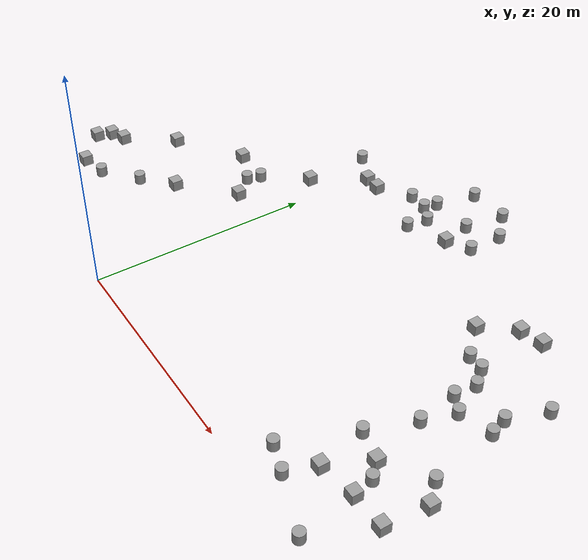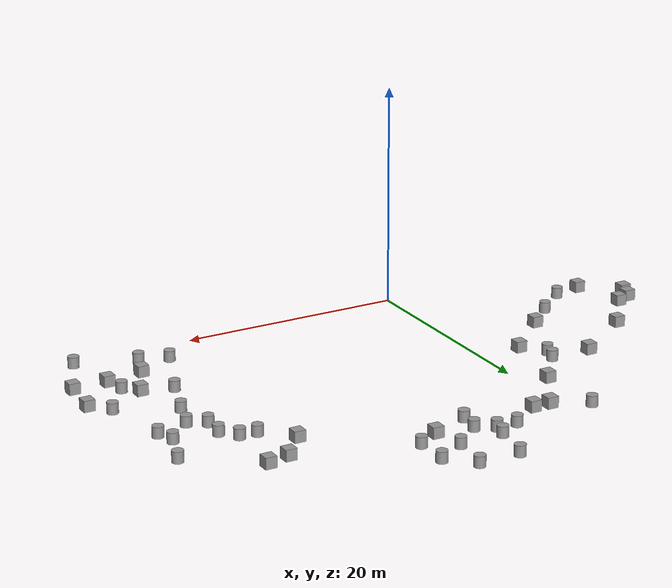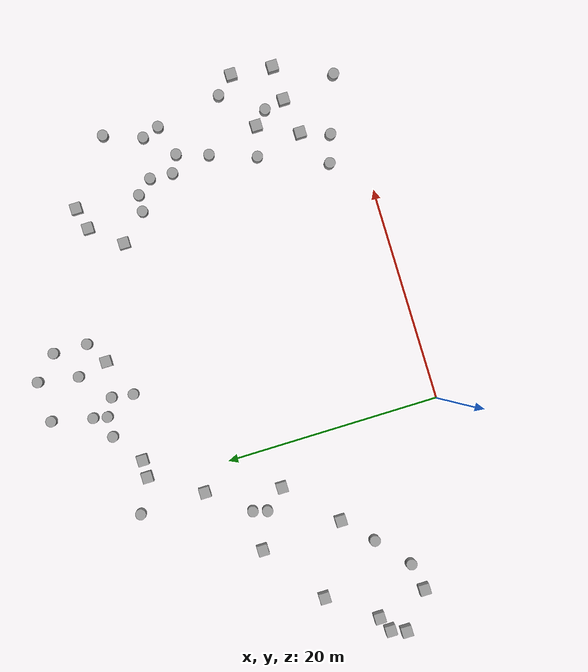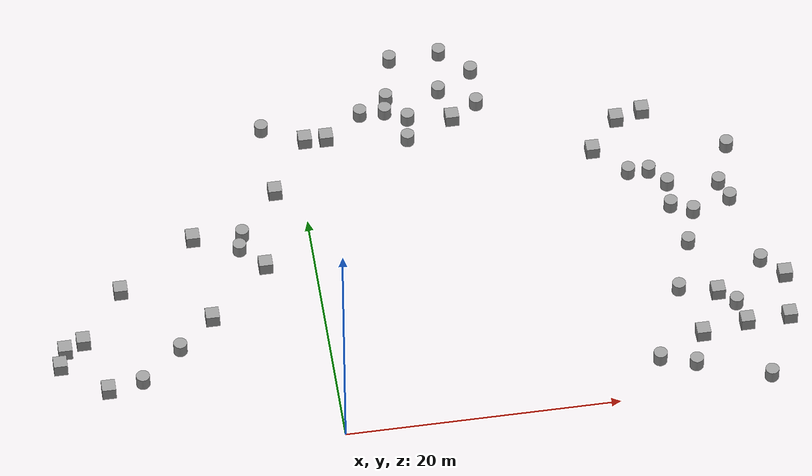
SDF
<sdf version="1.4">
 <world name="default">
  <include><uri>model://urdf/models/sun</uri></include>
  <model name="box_1">
   <pose>-17.665519 10.951884 0.500000 0.000000 0.000000 0.000000</pose>
   <link name="link">
    <inertial>
     <mass>1.000000</mass>
     <inertia>
      <ixx>0.166667</ixx>
      <ixy>0</ixy>
      <ixz>0</ixz>
      <iyy>0.166667</iyy>
      <iyz>0</iyz>
      <izz>0.166667</izz>
     </inertia>
    </inertial>
    <collision name="collision">
     <geometry><box><size>1.000000 1.000000 1.000000</size></box></geometry>
    </collision>
    <visual name="visual">
     <geometry><box><size>1.000000 1.000000 1.000000</size></box></geometry>
     <material>
      <script><name>Gazebo/Grey</name><uri>file://media/materials/scripts/gazebo.material</uri></script>
     </material>
    </visual>
   </link>
  </model>
  <model name="cylindar_2">
   <pose>-5.322258 17.909746 0.500000 0.000000 0.000000 0.000000</pose>
   <link name="link">
    <inertial>
     <mass>1.000000</mass>
     <inertia><ixx>0.145833</ixx><ixy>0</ixy><ixz>0</ixz><iyy>0.145833</iyy><iyz>0</iyz><izz>0.125</izz></inertia>
    </inertial>
    <collision name="collision">
     <geometry><cylinder><radius>0.500000</radius><length>1.000000</length></cylinder></geometry>
    </collision>
    <visual name="visual">
     <geometry><cylinder><radius>0.500000</radius><length>1.000000</length></cylinder></geometry>
     <material>
      <script><name>Gazebo/Grey</name><uri>file://media/materials/scripts/gazebo.material</uri></script>
     </material>
    </visual>
   </link>
  </model>
  <model name="cylindar_4">
   <pose>12.043559 34.589456 0.500000 0.000000 0.000000 0.000000</pose>
   <link name="link">
    <inertial>
     <mass>1.000000</mass>
     <inertia><ixx>0.145833</ixx><ixy>0</ixy><ixz>0</ixz><iyy>0.145833</iyy><iyz>0</iyz><izz>0.125</izz></inertia>
    </inertial>
    <collision name="collision">
     <geometry><cylinder><radius>0.500000</radius><length>1.000000</length></cylinder></geometry>
    </collision>
    <visual name="visual">
     <geometry><cylinder><radius>0.500000</radius><length>1.000000</length></cylinder></geometry>
     <material>
      <script><name>Gazebo/Grey</name><uri>file://media/materials/scripts/gazebo.material</uri></script>
     </material>
    </visual>
   </link>
  </model>
  <model name="box_11">
   <pose>-2.035579 22.907309 0.500000 0.000000 0.000000 0.000000</pose>
   <link name="link">
    <inertial>
     <mass>1.000000</mass>
     <inertia>
      <ixx>0.166667</ixx>
      <ixy>0</ixy>
      <ixz>0</ixz>
      <iyy>0.166667</iyy>
      <iyz>0</iyz>
      <izz>0.166667</izz>
     </inertia>
    </inertial>
    <collision name="collision">
     <geometry><box><size>1.000000 1.000000 1.000000</size></box></geometry>
    </collision>
    <visual name="visual">
     <geometry><box><size>1.000000 1.000000 1.000000</size></box></geometry>
     <material>
      <script><name>Gazebo/Grey</name><uri>file://media/materials/scripts/gazebo.material</uri></script>
     </material>
    </visual>
   </link>
  </model>
  <model name="cylindar_13">
   <pose>14.152731 32.445312 0.500000 0.000000 0.000000 0.000000</pose>
   <link name="link">
    <inertial>
     <mass>1.000000</mass>
     <inertia><ixx>0.145833</ixx><ixy>0</ixy><ixz>0</ixz><iyy>0.145833</iyy><iyz>0</iyz><izz>0.125</izz></inertia>
    </inertial>
    <collision name="collision">
     <geometry><cylinder><radius>0.500000</radius><length>1.000000</length></cylinder></geometry>
    </collision>
    <visual name="visual">
     <geometry><cylinder><radius>0.500000</radius><length>1.000000</length></cylinder></geometry>
     <material>
      <script><name>Gazebo/Grey</name><uri>file://media/materials/scripts/gazebo.material</uri></script>
     </material>
    </visual>
   </link>
  </model>
  <model name="cylindar_15">
   <pose>25.929253 9.365145 0.500000 0.000000 0.000000 0.000000</pose>
   <link name="link">
    <inertial>
     <mass>1.000000</mass>
     <inertia><ixx>0.145833</ixx><ixy>0</ixy><ixz>0</ixz><iyy>0.145833</iyy><iyz>0</iyz><izz>0.125</izz></inertia>
    </inertial>
    <collision name="collision">
     <geometry><cylinder><radius>0.500000</radius><length>1.000000</length></cylinder></geometry>
    </collision>
    <visual name="visual">
     <geometry><cylinder><radius>0.500000</radius><length>1.000000</length></cylinder></geometry>
     <material>
      <script><name>Gazebo/Grey</name><uri>file://media/materials/scripts/gazebo.material</uri></script>
     </material>
    </visual>
   </link>
  </model>
  <model name="box_17">
   <pose>-16.359451 6.270912 0.500000 0.000000 0.000000 0.000000</pose>
   <link name="link">
    <inertial>
     <mass>1.000000</mass>
     <inertia>
      <ixx>0.166667</ixx>
      <ixy>0</ixy>
      <ixz>0</ixz>
      <iyy>0.166667</iyy>
      <iyz>0</iyz>
      <izz>0.166667</izz>
     </inertia>
    </inertial>
    <collision name="collision">
     <geometry><box><size>1.000000 1.000000 1.000000</size></box></geometry>
    </collision>
    <visual name="visual">
     <geometry><box><size>1.000000 1.000000 1.000000</size></box></geometry>
     <material>
      <script><name>Gazebo/Grey</name><uri>file://media/materials/scripts/gazebo.material</uri></script>
     </material>
    </visual>
   </link>
  </model>
  <model name="box_21">
   <pose>12.042444 28.069900 0.500000 0.000000 0.000000 0.000000</pose>
   <link name="link">
    <inertial>
     <mass>1.000000</mass>
     <inertia>
      <ixx>0.166667</ixx>
      <ixy>0</ixy>
      <ixz>0</ixz>
      <iyy>0.166667</iyy>
      <iyz>0</iyz>
      <izz>0.166667</izz>
     </inertia>
    </inertial>
    <collision name="collision">
     <geometry><box><size>1.000000 1.000000 1.000000</size></box></geometry>
    </collision>
    <visual name="visual">
     <geometry><box><size>1.000000 1.000000 1.000000</size></box></geometry>
     <material>
      <script><name>Gazebo/Grey</name><uri>file://media/materials/scripts/gazebo.material</uri></script>
     </material>
    </visual>
   </link>
  </model>
  <model name="cylindar_22">
   <pose>26.872980 19.345198 0.500000 0.000000 0.000000 0.000000</pose>
   <link name="link">
    <inertial>
     <mass>1.000000</mass>
     <inertia><ixx>0.145833</ixx><ixy>0</ixy><ixz>0</ixz><iyy>0.145833</iyy><iyz>0</iyz><izz>0.125</izz></inertia>
    </inertial>
    <collision name="collision">
     <geometry><cylinder><radius>0.500000</radius><length>1.000000</length></cylinder></geometry>
    </collision>
    <visual name="visual">
     <geometry><cylinder><radius>0.500000</radius><length>1.000000</length></cylinder></geometry>
     <material>
      <script><name>Gazebo/Grey</name><uri>file://media/materials/scripts/gazebo.material</uri></script>
     </material>
    </visual>
   </link>
  </model>
  <model name="cylindar_24">
   <pose>-2.232297 29.077389 0.500000 0.000000 0.000000 0.000000</pose>
   <link name="link">
    <inertial>
     <mass>1.000000</mass>
     <inertia><ixx>0.145833</ixx><ixy>0</ixy><ixz>0</ixz><iyy>0.145833</iyy><iyz>0</iyz><izz>0.125</izz></inertia>
    </inertial>
    <collision name="collision">
     <geometry><cylinder><radius>0.500000</radius><length>1.000000</length></cylinder></geometry>
    </collision>
    <visual name="visual">
     <geometry><cylinder><radius>0.500000</radius><length>1.000000</length></cylinder></geometry>
     <material>
      <script><name>Gazebo/Grey</name><uri>file://media/materials/scripts/gazebo.material</uri></script>
     </material>
    </visual>
   </link>
  </model>
  <model name="box_25">
   <pose>26.909636 4.998011 0.500000 0.000000 0.000000 0.000000</pose>
   <link name="link">
    <inertial>
     <mass>1.000000</mass>
     <inertia>
      <ixx>0.166667</ixx>
      <ixy>0</ixy>
      <ixz>0</ixz>
      <iyy>0.166667</iyy>
      <iyz>0</iyz>
      <izz>0.166667</izz>
     </inertia>
    </inertial>
    <collision name="collision">
     <geometry><box><size>1.000000 1.000000 1.000000</size></box></geometry>
    </collision>
    <visual name="visual">
     <geometry><box><size>1.000000 1.000000 1.000000</size></box></geometry>
     <material>
      <script><name>Gazebo/Grey</name><uri>file://media/materials/scripts/gazebo.material</uri></script>
     </material>
    </visual>
   </link>
  </model>
  <model name="cylindar_26">
   <pose>29.852892 7.454227 0.500000 0.000000 0.000000 0.000000</pose>
   <link name="link">
    <inertial>
     <mass>1.000000</mass>
     <inertia><ixx>0.145833</ixx><ixy>0</ixy><ixz>0</ixz><iyy>0.145833</iyy><iyz>0</iyz><izz>0.125</izz></inertia>
    </inertial>
    <collision name="collision">
     <geometry><cylinder><radius>0.500000</radius><length>1.000000</length></cylinder></geometry>
    </collision>
    <visual name="visual">
     <geometry><cylinder><radius>0.500000</radius><length>1.000000</length></cylinder></geometry>
     <material>
      <script><name>Gazebo/Grey</name><uri>file://media/materials/scripts/gazebo.material</uri></script>
     </material>
    </visual>
   </link>
  </model>
  <model name="cylindar_27">
   <pose>-4.958954 19.207233 0.500000 0.000000 0.000000 0.000000</pose>
   <link name="link">
    <inertial>
     <mass>1.000000</mass>
     <inertia><ixx>0.145833</ixx><ixy>0</ixy><ixz>0</ixz><iyy>0.145833</iyy><iyz>0</iyz><izz>0.125</izz></inertia>
    </inertial>
    <collision name="collision">
     <geometry><cylinder><radius>0.500000</radius><length>1.000000</length></cylinder></geometry>
    </collision>
    <visual name="visual">
     <geometry><cylinder><radius>0.500000</radius><length>1.000000</length></cylinder></geometry>
     <material>
      <script><name>Gazebo/Grey</name><uri>file://media/materials/scripts/gazebo.material</uri></script>
     </material>
    </visual>
   </link>
  </model>
  <model name="cylindar_28">
   <pose>31.890558 22.335854 0.500000 0.000000 0.000000 0.000000</pose>
   <link name="link">
    <inertial>
     <mass>1.000000</mass>
     <inertia><ixx>0.145833</ixx><ixy>0</ixy><ixz>0</ixz><iyy>0.145833</iyy><iyz>0</iyz><izz>0.125</izz></inertia>
    </inertial>
    <collision name="collision">
     <geometry><cylinder><radius>0.500000</radius><length>1.000000</length></cylinder></geometry>
    </collision>
    <visual name="visual">
     <geometry><cylinder><radius>0.500000</radius><length>1.000000</length></cylinder></geometry>
     <material>
      <script><name>Gazebo/Grey</name><uri>file://media/materials/scripts/gazebo.material</uri></script>
     </material>
    </visual>
   </link>
  </model>
  <model name="box_32">
   <pose>24.177609 26.104941 0.500000 0.000000 0.000000 0.000000</pose>
   <link name="link">
    <inertial>
     <mass>1.000000</mass>
     <inertia>
      <ixx>0.166667</ixx>
      <ixy>0</ixy>
      <ixz>0</ixz>
      <iyy>0.166667</iyy>
      <iyz>0</iyz>
      <izz>0.166667</izz>
     </inertia>
    </inertial>
    <collision name="collision">
     <geometry><box><size>1.000000 1.000000 1.000000</size></box></geometry>
    </collision>
    <visual name="visual">
     <geometry><box><size>1.000000 1.000000 1.000000</size></box></geometry>
     <material>
      <script><name>Gazebo/Grey</name><uri>file://media/materials/scripts/gazebo.material</uri></script>
     </material>
    </visual>
   </link>
  </model>
  <model name="box_34">
   <pose>33.836100 9.510949 0.500000 0.000000 0.000000 0.000000</pose>
   <link name="link">
    <inertial>
     <mass>1.000000</mass>
     <inertia>
      <ixx>0.166667</ixx>
      <ixy>0</ixy>
      <ixz>0</ixz>
      <iyy>0.166667</iyy>
      <iyz>0</iyz>
      <izz>0.166667</izz>
     </inertia>
    </inertial>
    <collision name="collision">
     <geometry><box><size>1.000000 1.000000 1.000000</size></box></geometry>
    </collision>
    <visual name="visual">
     <geometry><box><size>1.000000 1.000000 1.000000</size></box></geometry>
     <material>
      <script><name>Gazebo/Grey</name><uri>file://media/materials/scripts/gazebo.material</uri></script>
     </material>
    </visual>
   </link>
  </model>
  <model name="box_38">
   <pose>-3.653764 16.031023 0.500000 0.000000 0.000000 0.000000</pose>
   <link name="link">
    <inertial>
     <mass>1.000000</mass>
     <inertia>
      <ixx>0.166667</ixx>
      <ixy>0</ixy>
      <ixz>0</ixz>
      <iyy>0.166667</iyy>
      <iyz>0</iyz>
      <izz>0.166667</izz>
     </inertia>
    </inertial>
    <collision name="collision">
     <geometry><box><size>1.000000 1.000000 1.000000</size></box></geometry>
    </collision>
    <visual name="visual">
     <geometry><box><size>1.000000 1.000000 1.000000</size></box></geometry>
     <material>
      <script><name>Gazebo/Grey</name><uri>file://media/materials/scripts/gazebo.material</uri></script>
     </material>
    </visual>
   </link>
  </model>
  <model name="cylindar_41">
   <pose>11.443076 30.857965 0.500000 0.000000 0.000000 0.000000</pose>
   <link name="link">
    <inertial>
     <mass>1.000000</mass>
     <inertia><ixx>0.145833</ixx><ixy>0</ixy><ixz>0</ixz><iyy>0.145833</iyy><iyz>0</iyz><izz>0.125</izz></inertia>
    </inertial>
    <collision name="collision">
     <geometry><cylinder><radius>0.500000</radius><length>1.000000</length></cylinder></geometry>
    </collision>
    <visual name="visual">
     <geometry><cylinder><radius>0.500000</radius><length>1.000000</length></cylinder></geometry>
     <material>
      <script><name>Gazebo/Grey</name><uri>file://media/materials/scripts/gazebo.material</uri></script>
     </material>
    </visual>
   </link>
  </model>
  <model name="cylindar_44">
   <pose>-13.803489 6.749120 0.500000 0.000000 0.000000 0.000000</pose>
   <link name="link">
    <inertial>
     <mass>1.000000</mass>
     <inertia><ixx>0.145833</ixx><ixy>0</ixy><ixz>0</ixz><iyy>0.145833</iyy><iyz>0</iyz><izz>0.125</izz></inertia>
    </inertial>
    <collision name="collision">
     <geometry><cylinder><radius>0.500000</radius><length>1.000000</length></cylinder></geometry>
    </collision>
    <visual name="visual">
     <geometry><cylinder><radius>0.500000</radius><length>1.000000</length></cylinder></geometry>
     <material>
      <script><name>Gazebo/Grey</name><uri>file://media/materials/scripts/gazebo.material</uri></script>
     </material>
    </visual>
   </link>
  </model>
  <model name="cylindar_46">
   <pose>-10.776565 9.318425 0.500000 0.000000 0.000000 0.000000</pose>
   <link name="link">
    <inertial>
     <mass>1.000000</mass>
     <inertia><ixx>0.145833</ixx><ixy>0</ixy><ixz>0</ixz><iyy>0.145833</iyy><iyz>0</iyz><izz>0.125</izz></inertia>
    </inertial>
    <collision name="collision">
     <geometry><cylinder><radius>0.500000</radius><length>1.000000</length></cylinder></geometry>
    </collision>
    <visual name="visual">
     <geometry><cylinder><radius>0.500000</radius><length>1.000000</length></cylinder></geometry>
     <material>
      <script><name>Gazebo/Grey</name><uri>file://media/materials/scripts/gazebo.material</uri></script>
     </material>
    </visual>
   </link>
  </model>
  <model name="cylindar_48">
   <pose>7.432728 30.696900 0.500000 0.000000 0.000000 0.000000</pose>
   <link name="link">
    <inertial>
     <mass>1.000000</mass>
     <inertia><ixx>0.145833</ixx><ixy>0</ixy><ixz>0</ixz><iyy>0.145833</iyy><iyz>0</iyz><izz>0.125</izz></inertia>
    </inertial>
    <collision name="collision">
     <geometry><cylinder><radius>0.500000</radius><length>1.000000</length></cylinder></geometry>
    </collision>
    <visual name="visual">
     <geometry><cylinder><radius>0.500000</radius><length>1.000000</length></cylinder></geometry>
     <material>
      <script><name>Gazebo/Grey</name><uri>file://media/materials/scripts/gazebo.material</uri></script>
     </material>
    </visual>
   </link>
  </model>
  <model name="cylindar_49">
   <pose>32.325318 11.130729 0.500000 0.000000 0.000000 0.000000</pose>
   <link name="link">
    <inertial>
     <mass>1.000000</mass>
     <inertia><ixx>0.145833</ixx><ixy>0</ixy><ixz>0</ixz><iyy>0.145833</iyy><iyz>0</iyz><izz>0.125</izz></inertia>
    </inertial>
    <collision name="collision">
     <geometry><cylinder><radius>0.500000</radius><length>1.000000</length></cylinder></geometry>
    </collision>
    <visual name="visual">
     <geometry><cylinder><radius>0.500000</radius><length>1.000000</length></cylinder></geometry>
     <material>
      <script><name>Gazebo/Grey</name><uri>file://media/materials/scripts/gazebo.material</uri></script>
     </material>
    </visual>
   </link>
  </model>
  <model name="box_50">
   <pose>-19.557383 8.941897 0.500000 0.000000 0.000000 0.000000</pose>
   <link name="link">
    <inertial>
     <mass>1.000000</mass>
     <inertia>
      <ixx>0.166667</ixx>
      <ixy>0</ixy>
      <ixz>0</ixz>
      <iyy>0.166667</iyy>
      <iyz>0</iyz>
      <izz>0.166667</izz>
     </inertia>
    </inertial>
    <collision name="collision">
     <geometry><box><size>1.000000 1.000000 1.000000</size></box></geometry>
    </collision>
    <visual name="visual">
     <geometry><box><size>1.000000 1.000000 1.000000</size></box></geometry>
     <material>
      <script><name>Gazebo/Grey</name><uri>file://media/materials/scripts/gazebo.material</uri></script>
     </material>
    </visual>
   </link>
  </model>
  <model name="box_51">
   <pose>-8.126249 11.760559 0.500000 0.000000 0.000000 0.000000</pose>
   <link name="link">
    <inertial>
     <mass>1.000000</mass>
     <inertia>
      <ixx>0.166667</ixx>
      <ixy>0</ixy>
      <ixz>0</ixz>
      <iyy>0.166667</iyy>
      <iyz>0</iyz>
      <izz>0.166667</izz>
     </inertia>
    </inertial>
    <collision name="collision">
     <geometry><box><size>1.000000 1.000000 1.000000</size></box></geometry>
    </collision>
    <visual name="visual">
     <geometry><box><size>1.000000 1.000000 1.000000</size></box></geometry>
     <material>
      <script><name>Gazebo/Grey</name><uri>file://media/materials/scripts/gazebo.material</uri></script>
     </material>
    </visual>
   </link>
  </model>
  <model name="box_52">
   <pose>26.225055 26.619723 0.500000 0.000000 0.000000 0.000000</pose>
   <link name="link">
    <inertial>
     <mass>1.000000</mass>
     <inertia>
      <ixx>0.166667</ixx>
      <ixy>0</ixy>
      <ixz>0</ixz>
      <iyy>0.166667</iyy>
      <iyz>0</iyz>
      <izz>0.166667</izz>
     </inertia>
    </inertial>
    <collision name="collision">
     <geometry><box><size>1.000000 1.000000 1.000000</size></box></geometry>
    </collision>
    <visual name="visual">
     <geometry><box><size>1.000000 1.000000 1.000000</size></box></geometry>
     <material>
      <script><name>Gazebo/Grey</name><uri>file://media/materials/scripts/gazebo.material</uri></script>
     </material>
    </visual>
   </link>
  </model>
  <model name="cylindar_53">
   <pose>28.302107 16.427710 0.500000 0.000000 0.000000 0.000000</pose>
   <link name="link">
    <inertial>
     <mass>1.000000</mass>
     <inertia><ixx>0.145833</ixx><ixy>0</ixy><ixz>0</ixz><iyy>0.145833</iyy><iyz>0</iyz><izz>0.125</izz></inertia>
    </inertial>
    <collision name="collision">
     <geometry><cylinder><radius>0.500000</radius><length>1.000000</length></cylinder></geometry>
    </collision>
    <visual name="visual">
     <geometry><cylinder><radius>0.500000</radius><length>1.000000</length></cylinder></geometry>
     <material>
      <script><name>Gazebo/Grey</name><uri>file://media/materials/scripts/gazebo.material</uri></script>
     </material>
    </visual>
   </link>
  </model>
  <model name="cylindar_56">
   <pose>24.197257 20.876116 0.500000 0.000000 0.000000 0.000000</pose>
   <link name="link">
    <inertial>
     <mass>1.000000</mass>
     <inertia><ixx>0.145833</ixx><ixy>0</ixy><ixz>0</ixz><iyy>0.145833</iyy><iyz>0</iyz><izz>0.125</izz></inertia>
    </inertial>
    <collision name="collision">
     <geometry><cylinder><radius>0.500000</radius><length>1.000000</length></cylinder></geometry>
    </collision>
    <visual name="visual">
     <geometry><cylinder><radius>0.500000</radius><length>1.000000</length></cylinder></geometry>
     <material>
      <script><name>Gazebo/Grey</name><uri>file://media/materials/scripts/gazebo.material</uri></script>
     </material>
    </visual>
   </link>
  </model>
  <model name="cylindar_58">
   <pose>26.746012 17.236281 0.500000 0.000000 0.000000 0.000000</pose>
   <link name="link">
    <inertial>
     <mass>1.000000</mass>
     <inertia><ixx>0.145833</ixx><ixy>0</ixy><ixz>0</ixz><iyy>0.145833</iyy><iyz>0</iyz><izz>0.125</izz></inertia>
    </inertial>
    <collision name="collision">
     <geometry><cylinder><radius>0.500000</radius><length>1.000000</length></cylinder></geometry>
    </collision>
    <visual name="visual">
     <geometry><cylinder><radius>0.500000</radius><length>1.000000</length></cylinder></geometry>
     <material>
      <script><name>Gazebo/Grey</name><uri>file://media/materials/scripts/gazebo.material</uri></script>
     </material>
    </visual>
   </link>
  </model>
  <model name="cylindar_59">
   <pose>23.443340 3.210182 0.500000 0.000000 0.000000 0.000000</pose>
   <link name="link">
    <inertial>
     <mass>1.000000</mass>
     <inertia><ixx>0.145833</ixx><ixy>0</ixy><ixz>0</ixz><iyy>0.145833</iyy><iyz>0</iyz><izz>0.125</izz></inertia>
    </inertial>
    <collision name="collision">
     <geometry><cylinder><radius>0.500000</radius><length>1.000000</length></cylinder></geometry>
    </collision>
    <visual name="visual">
     <geometry><cylinder><radius>0.500000</radius><length>1.000000</length></cylinder></geometry>
     <material>
      <script><name>Gazebo/Grey</name><uri>file://media/materials/scripts/gazebo.material</uri></script>
     </material>
    </visual>
   </link>
  </model>
  <model name="cylindar_64">
   <pose>31.189046 17.275135 0.500000 0.000000 0.000000 0.000000</pose>
   <link name="link">
    <inertial>
     <mass>1.000000</mass>
     <inertia><ixx>0.145833</ixx><ixy>0</ixy><ixz>0</ixz><iyy>0.145833</iyy><iyz>0</iyz><izz>0.125</izz></inertia>
    </inertial>
    <collision name="collision">
     <geometry><cylinder><radius>0.500000</radius><length>1.000000</length></cylinder></geometry>
    </collision>
    <visual name="visual">
     <geometry><cylinder><radius>0.500000</radius><length>1.000000</length></cylinder></geometry>
     <material>
      <script><name>Gazebo/Grey</name><uri>file://media/materials/scripts/gazebo.material</uri></script>
     </material>
    </visual>
   </link>
  </model>
  <model name="box_65">
   <pose>21.921507 23.341778 0.500000 0.000000 0.000000 0.000000</pose>
   <link name="link">
    <inertial>
     <mass>1.000000</mass>
     <inertia>
      <ixx>0.166667</ixx>
      <ixy>0</ixy>
      <ixz>0</ixz>
      <iyy>0.166667</iyy>
      <iyz>0</iyz>
      <izz>0.166667</izz>
     </inertia>
    </inertial>
    <collision name="collision">
     <geometry><box><size>1.000000 1.000000 1.000000</size></box></geometry>
    </collision>
    <visual name="visual">
     <geometry><box><size>1.000000 1.000000 1.000000</size></box></geometry>
     <material>
      <script><name>Gazebo/Grey</name><uri>file://media/materials/scripts/gazebo.material</uri></script>
     </material>
    </visual>
   </link>
  </model>
  <model name="cylindar_66">
   <pose>8.254451 34.448703 0.500000 0.000000 0.000000 0.000000</pose>
   <link name="link">
    <inertial>
     <mass>1.000000</mass>
     <inertia><ixx>0.145833</ixx><ixy>0</ixy><ixz>0</ixz><iyy>0.145833</iyy><iyz>0</iyz><izz>0.125</izz></inertia>
    </inertial>
    <collision name="collision">
     <geometry><cylinder><radius>0.500000</radius><length>1.000000</length></cylinder></geometry>
    </collision>
    <visual name="visual">
     <geometry><cylinder><radius>0.500000</radius><length>1.000000</length></cylinder></geometry>
     <material>
      <script><name>Gazebo/Grey</name><uri>file://media/materials/scripts/gazebo.material</uri></script>
     </material>
    </visual>
   </link>
  </model>
  <model name="box_68">
   <pose>28.680419 8.652109 0.500000 0.000000 0.000000 0.000000</pose>
   <link name="link">
    <inertial>
     <mass>1.000000</mass>
     <inertia>
      <ixx>0.166667</ixx>
      <ixy>0</ixy>
      <ixz>0</ixz>
      <iyy>0.166667</iyy>
      <iyz>0</iyz>
      <izz>0.166667</izz>
     </inertia>
    </inertial>
    <collision name="collision">
     <geometry><box><size>1.000000 1.000000 1.000000</size></box></geometry>
    </collision>
    <visual name="visual">
     <geometry><box><size>1.000000 1.000000 1.000000</size></box></geometry>
     <material>
      <script><name>Gazebo/Grey</name><uri>file://media/materials/scripts/gazebo.material</uri></script>
     </material>
    </visual>
   </link>
  </model>
  <model name="box_69">
   <pose>-8.623911 19.359339 0.500000 0.000000 0.000000 0.000000</pose>
   <link name="link">
    <inertial>
     <mass>1.000000</mass>
     <inertia>
      <ixx>0.166667</ixx>
      <ixy>0</ixy>
      <ixz>0</ixz>
      <iyy>0.166667</iyy>
      <iyz>0</iyz>
      <izz>0.166667</izz>
     </inertia>
    </inertial>
    <collision name="collision">
     <geometry><box><size>1.000000 1.000000 1.000000</size></box></geometry>
    </collision>
    <visual name="visual">
     <geometry><box><size>1.000000 1.000000 1.000000</size></box></geometry>
     <material>
      <script><name>Gazebo/Grey</name><uri>file://media/materials/scripts/gazebo.material</uri></script>
     </material>
    </visual>
   </link>
  </model>
  <model name="box_72">
   <pose>0.835614 27.539527 0.500000 0.000000 0.000000 0.000000</pose>
   <link name="link">
    <inertial>
     <mass>1.000000</mass>
     <inertia>
      <ixx>0.166667</ixx>
      <ixy>0</ixy>
      <ixz>0</ixz>
      <iyy>0.166667</iyy>
      <iyz>0</iyz>
      <izz>0.166667</izz>
     </inertia>
    </inertial>
    <collision name="collision">
     <geometry><box><size>1.000000 1.000000 1.000000</size></box></geometry>
    </collision>
    <visual name="visual">
     <geometry><box><size>1.000000 1.000000 1.000000</size></box></geometry>
     <material>
      <script><name>Gazebo/Grey</name><uri>file://media/materials/scripts/gazebo.material</uri></script>
     </material>
    </visual>
   </link>
  </model>
  <model name="cylindar_73">
   <pose>30.642931 18.863101 0.500000 0.000000 0.000000 0.000000</pose>
   <link name="link">
    <inertial>
     <mass>1.000000</mass>
     <inertia><ixx>0.145833</ixx><ixy>0</ixy><ixz>0</ixz><iyy>0.145833</iyy><iyz>0</iyz><izz>0.125</izz></inertia>
    </inertial>
    <collision name="collision">
     <geometry><cylinder><radius>0.500000</radius><length>1.000000</length></cylinder></geometry>
    </collision>
    <visual name="visual">
     <geometry><cylinder><radius>0.500000</radius><length>1.000000</length></cylinder></geometry>
     <material>
      <script><name>Gazebo/Grey</name><uri>file://media/materials/scripts/gazebo.material</uri></script>
     </material>
    </visual>
   </link>
  </model>
  <model name="cylindar_74">
   <pose>7.159289 29.405831 0.500000 0.000000 0.000000 0.000000</pose>
   <link name="link">
    <inertial>
     <mass>1.000000</mass>
     <inertia><ixx>0.145833</ixx><ixy>0</ixy><ixz>0</ixz><iyy>0.145833</iyy><iyz>0</iyz><izz>0.125</izz></inertia>
    </inertial>
    <collision name="collision">
     <geometry><cylinder><radius>0.500000</radius><length>1.000000</length></cylinder></geometry>
    </collision>
    <visual name="visual">
     <geometry><cylinder><radius>0.500000</radius><length>1.000000</length></cylinder></geometry>
     <material>
      <script><name>Gazebo/Grey</name><uri>file://media/materials/scripts/gazebo.material</uri></script>
     </material>
    </visual>
   </link>
  </model>
  <model name="cylindar_76">
   <pose>14.082681 29.269074 0.500000 0.000000 0.000000 0.000000</pose>
   <link name="link">
    <inertial>
     <mass>1.000000</mass>
     <inertia><ixx>0.145833</ixx><ixy>0</ixy><ixz>0</ixz><iyy>0.145833</iyy><iyz>0</iyz><izz>0.125</izz></inertia>
    </inertial>
    <collision name="collision">
     <geometry><cylinder><radius>0.500000</radius><length>1.000000</length></cylinder></geometry>
    </collision>
    <visual name="visual">
     <geometry><cylinder><radius>0.500000</radius><length>1.000000</length></cylinder></geometry>
     <material>
      <script><name>Gazebo/Grey</name><uri>file://media/materials/scripts/gazebo.material</uri></script>
     </material>
    </visual>
   </link>
  </model>
  <model name="box_80">
   <pose>-14.454850 15.230739 0.500000 0.000000 0.000000 0.000000</pose>
   <link name="link">
    <inertial>
     <mass>1.000000</mass>
     <inertia>
      <ixx>0.166667</ixx>
      <ixy>0</ixy>
      <ixz>0</ixz>
      <iyy>0.166667</iyy>
      <iyz>0</iyz>
      <izz>0.166667</izz>
     </inertia>
    </inertial>
    <collision name="collision">
     <geometry><box><size>1.000000 1.000000 1.000000</size></box></geometry>
    </collision>
    <visual name="visual">
     <geometry><box><size>1.000000 1.000000 1.000000</size></box></geometry>
     <material>
      <script><name>Gazebo/Grey</name><uri>file://media/materials/scripts/gazebo.material</uri></script>
     </material>
    </visual>
   </link>
  </model>
  <model name="box_83">
   <pose>33.440475 5.660670 0.500000 0.000000 0.000000 0.000000</pose>
   <link name="link">
    <inertial>
     <mass>1.000000</mass>
     <inertia>
      <ixx>0.166667</ixx>
      <ixy>0</ixy>
      <ixz>0</ixz>
      <iyy>0.166667</iyy>
      <iyz>0</iyz>
      <izz>0.166667</izz>
     </inertia>
    </inertial>
    <collision name="collision">
     <geometry><box><size>1.000000 1.000000 1.000000</size></box></geometry>
    </collision>
    <visual name="visual">
     <geometry><box><size>1.000000 1.000000 1.000000</size></box></geometry>
     <material>
      <script><name>Gazebo/Grey</name><uri>file://media/materials/scripts/gazebo.material</uri></script>
     </material>
    </visual>
   </link>
  </model>
  <model name="cylindar_86">
   <pose>8.470717 26.538632 0.500000 0.000000 0.000000 0.000000</pose>
   <link name="link">
    <inertial>
     <mass>1.000000</mass>
     <inertia><ixx>0.145833</ixx><ixy>0</ixy><ixz>0</ixz><iyy>0.145833</iyy><iyz>0</iyz><izz>0.125</izz></inertia>
    </inertial>
    <collision name="collision">
     <geometry><cylinder><radius>0.500000</radius><length>1.000000</length></cylinder></geometry>
    </collision>
    <visual name="visual">
     <geometry><cylinder><radius>0.500000</radius><length>1.000000</length></cylinder></geometry>
     <material>
      <script><name>Gazebo/Grey</name><uri>file://media/materials/scripts/gazebo.material</uri></script>
     </material>
    </visual>
   </link>
  </model>
  <model name="cylindar_87">
   <pose>8.762643 28.535349 0.500000 0.000000 0.000000 0.000000</pose>
   <link name="link">
    <inertial>
     <mass>1.000000</mass>
     <inertia><ixx>0.145833</ixx><ixy>0</ixy><ixz>0</ixz><iyy>0.145833</iyy><iyz>0</iyz><izz>0.125</izz></inertia>
    </inertial>
    <collision name="collision">
     <geometry><cylinder><radius>0.500000</radius><length>1.000000</length></cylinder></geometry>
    </collision>
    <visual name="visual">
     <geometry><cylinder><radius>0.500000</radius><length>1.000000</length></cylinder></geometry>
     <material>
      <script><name>Gazebo/Grey</name><uri>file://media/materials/scripts/gazebo.material</uri></script>
     </material>
    </visual>
   </link>
  </model>
  <model name="cylindar_88">
   <pose>31.142641 0.518374 0.500000 0.000000 0.000000 0.000000</pose>
   <link name="link">
    <inertial>
     <mass>1.000000</mass>
     <inertia><ixx>0.145833</ixx><ixy>0</ixy><ixz>0</ixz><iyy>0.145833</iyy><iyz>0</iyz><izz>0.125</izz></inertia>
    </inertial>
    <collision name="collision">
     <geometry><cylinder><radius>0.500000</radius><length>1.000000</length></cylinder></geometry>
    </collision>
    <visual name="visual">
     <geometry><cylinder><radius>0.500000</radius><length>1.000000</length></cylinder></geometry>
     <material>
      <script><name>Gazebo/Grey</name><uri>file://media/materials/scripts/gazebo.material</uri></script>
     </material>
    </visual>
   </link>
  </model>
  <model name="cylindar_89">
   <pose>27.385899 13.550238 0.500000 0.000000 0.000000 0.000000</pose>
   <link name="link">
    <inertial>
     <mass>1.000000</mass>
     <inertia><ixx>0.145833</ixx><ixy>0</ixy><ixz>0</ixz><iyy>0.145833</iyy><iyz>0</iyz><izz>0.125</izz></inertia>
    </inertial>
    <collision name="collision">
     <geometry><cylinder><radius>0.500000</radius><length>1.000000</length></cylinder></geometry>
    </collision>
    <visual name="visual">
     <geometry><cylinder><radius>0.500000</radius><length>1.000000</length></cylinder></geometry>
     <material>
      <script><name>Gazebo/Grey</name><uri>file://media/materials/scripts/gazebo.material</uri></script>
     </material>
    </visual>
   </link>
  </model>
  <model name="box_92">
   <pose>-19.059515 10.315524 0.500000 0.000000 0.000000 0.000000</pose>
   <link name="link">
    <inertial>
     <mass>1.000000</mass>
     <inertia>
      <ixx>0.166667</ixx>
      <ixy>0</ixy>
      <ixz>0</ixz>
      <iyy>0.166667</iyy>
      <iyz>0</iyz>
      <izz>0.166667</izz>
     </inertia>
    </inertial>
    <collision name="collision">
     <geometry><box><size>1.000000 1.000000 1.000000</size></box></geometry>
    </collision>
    <visual name="visual">
     <geometry><box><size>1.000000 1.000000 1.000000</size></box></geometry>
     <material>
      <script><name>Gazebo/Grey</name><uri>file://media/materials/scripts/gazebo.material</uri></script>
     </material>
    </visual>
   </link>
  </model>
  <model name="cylindar_93">
   <pose>25.962850 2.367549 0.500000 0.000000 0.000000 0.000000</pose>
   <link name="link">
    <inertial>
     <mass>1.000000</mass>
     <inertia><ixx>0.145833</ixx><ixy>0</ixy><ixz>0</ixz><iyy>0.145833</iyy><iyz>0</iyz><izz>0.125</izz></inertia>
    </inertial>
    <collision name="collision">
     <geometry><cylinder><radius>0.500000</radius><length>1.000000</length></cylinder></geometry>
    </collision>
    <visual name="visual">
     <geometry><cylinder><radius>0.500000</radius><length>1.000000</length></cylinder></geometry>
     <material>
      <script><name>Gazebo/Grey</name><uri>file://media/materials/scripts/gazebo.material</uri></script>
     </material>
    </visual>
   </link>
  </model>
  <model name="cylindar_94">
   <pose>25.726425 20.758225 0.500000 0.000000 0.000000 0.000000</pose>
   <link name="link">
    <inertial>
     <mass>1.000000</mass>
     <inertia><ixx>0.145833</ixx><ixy>0</ixy><ixz>0</ixz><iyy>0.145833</iyy><iyz>0</iyz><izz>0.125</izz></inertia>
    </inertial>
    <collision name="collision">
     <geometry><cylinder><radius>0.500000</radius><length>1.000000</length></cylinder></geometry>
    </collision>
    <visual name="visual">
     <geometry><cylinder><radius>0.500000</radius><length>1.000000</length></cylinder></geometry>
     <material>
      <script><name>Gazebo/Grey</name><uri>file://media/materials/scripts/gazebo.material</uri></script>
     </material>
    </visual>
   </link>
  </model>
  <model name="cylindar_95">
   <pose>5.282544 29.461136 0.500000 0.000000 0.000000 0.000000</pose>
   <link name="link">
    <inertial>
     <mass>1.000000</mass>
     <inertia><ixx>0.145833</ixx><ixy>0</ixy><ixz>0</ixz><iyy>0.145833</iyy><iyz>0</iyz><izz>0.125</izz></inertia>
    </inertial>
    <collision name="collision">
     <geometry><cylinder><radius>0.500000</radius><length>1.000000</length></cylinder></geometry>
    </collision>
    <visual name="visual">
     <geometry><cylinder><radius>0.500000</radius><length>1.000000</length></cylinder></geometry>
     <material>
      <script><name>Gazebo/Grey</name><uri>file://media/materials/scripts/gazebo.material</uri></script>
     </material>
    </visual>
   </link>
  </model>
  <model name="box_98">
   <pose>30.276914 5.566390 0.500000 0.000000 0.000000 0.000000</pose>
   <link name="link">
    <inertial>
     <mass>1.000000</mass>
     <inertia>
      <ixx>0.166667</ixx>
      <ixy>0</ixy>
      <ixz>0</ixz>
      <iyy>0.166667</iyy>
      <iyz>0</iyz>
      <izz>0.166667</izz>
     </inertia>
    </inertial>
    <collision name="collision">
     <geometry><box><size>1.000000 1.000000 1.000000</size></box></geometry>
    </collision>
    <visual name="visual">
     <geometry><box><size>1.000000 1.000000 1.000000</size></box></geometry>
     <material>
      <script><name>Gazebo/Grey</name><uri>file://media/materials/scripts/gazebo.material</uri></script>
     </material>
    </visual>
   </link>
  </model>
  <model name="box_99">
   <pose>2.439724 27.491545 0.500000 0.000000 0.000000 0.000000</pose>
   <link name="link">
    <inertial>
     <mass>1.000000</mass>
     <inertia>
      <ixx>0.166667</ixx>
      <ixy>0</ixy>
      <ixz>0</ixz>
      <iyy>0.166667</iyy>
      <iyz>0</iyz>
      <izz>0.166667</izz>
     </inertia>
    </inertial>
    <collision name="collision">
     <geometry><box><size>1.000000 1.000000 1.000000</size></box></geometry>
    </collision>
    <visual name="visual">
     <geometry><box><size>1.000000 1.000000 1.000000</size></box></geometry>
     <material>
      <script><name>Gazebo/Grey</name><uri>file://media/materials/scripts/gazebo.material</uri></script>
     </material>
    </visual>
   </link>
  </model>
 </world>
</sdf>
